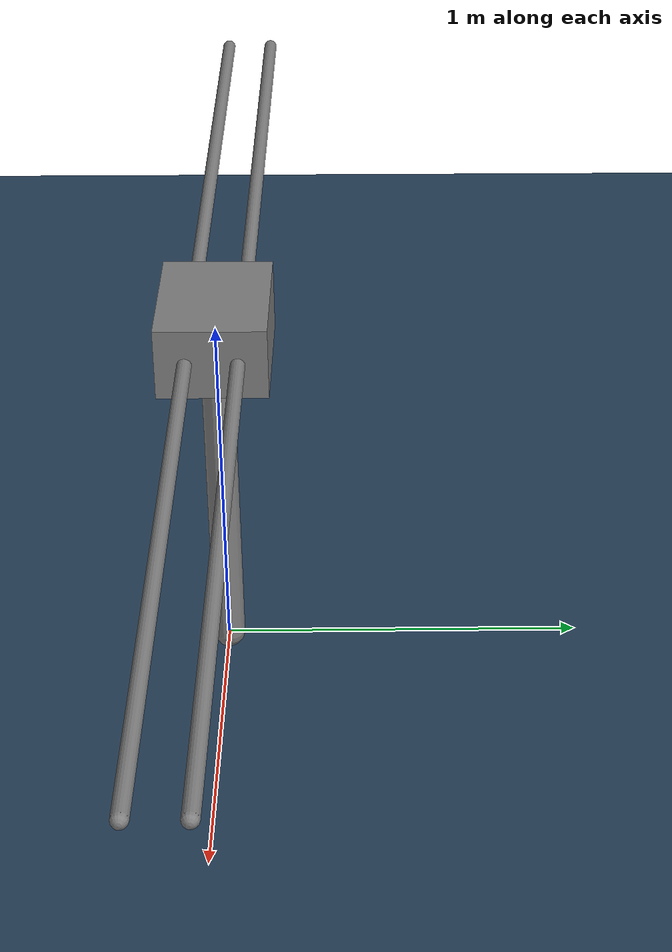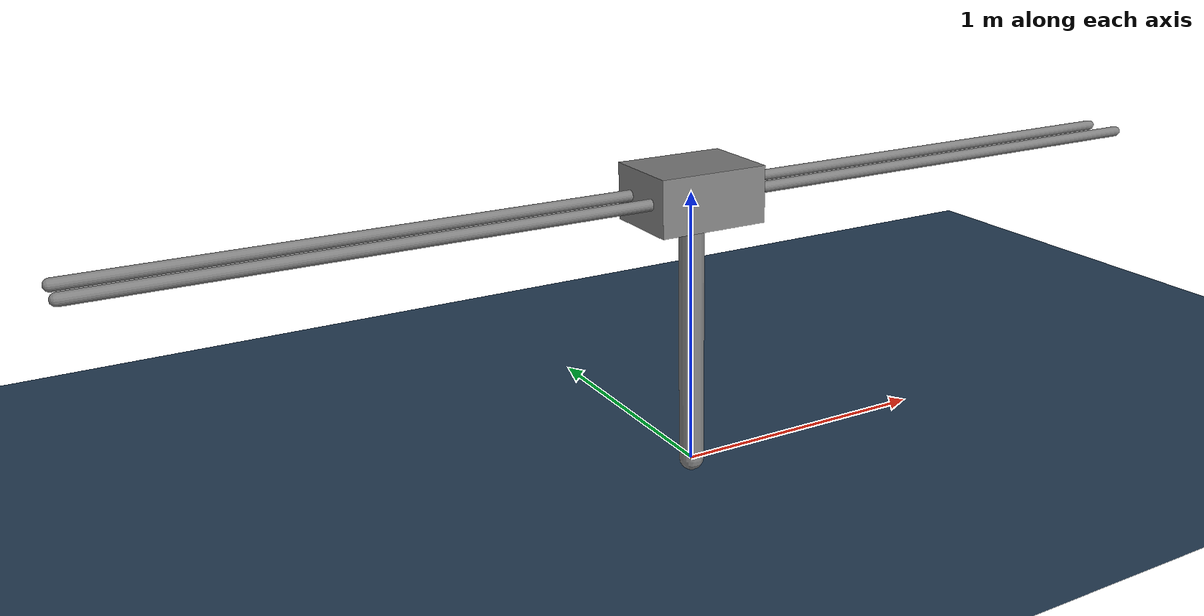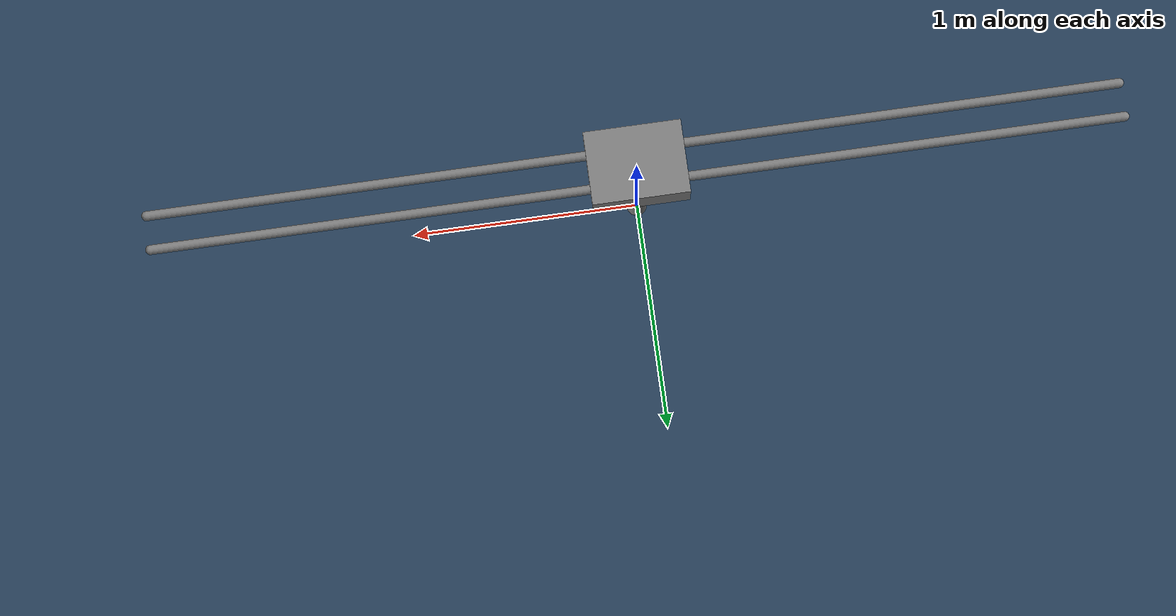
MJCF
<mujoco model="cart_pole_scene">
  <!-- Model that includes the cart-pole along with scene details like lighting and a ground. -->
  <include file="cart_pole_unconstrained.xml"/>

  <statistic center="0.0 0.0 1.0" extent="3.0"/>

  <visual>
    <headlight diffuse="0.6 0.6 0.6" ambient="0.3 0.3 0.3" specular="0 0 0"/>
    <rgba haze="0.15 0.25 0.35 1"/>
    <global elevation="0.0"/>
  </visual>

  <asset>
    <texture type="skybox" builtin="gradient" rgb1="0.3 0.5 0.7" rgb2="0 0 0" width="512" height="3072"/>
    <texture type="2d" name="groundplane" builtin="checker" mark="edge" rgb1="0.2 0.3 0.4" rgb2="0.1 0.2 0.3"
      markrgb="0.8 0.8 0.8" width="300" height="300"/>
    <material name="groundplane" texture="groundplane" texuniform="true" texrepeat="5 5" reflectance="0.2"/>
  </asset>

  <worldbody>
    <light pos="0 0 3" dir="0 0 -1" directional="false"/>
    <geom name="floor" pos="0 0 -0.05" size="0 0 .125" type="plane" material="groundplane" conaffinity="15" condim="3"/>
  </worldbody>

</mujoco>

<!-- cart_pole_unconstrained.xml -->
<mujoco model="cartpole">
  <option timestep="0.01" iterations="1" ls_iterations="5">
    <flag contact="disable"/>
  </option>

  <default>
    <default class="pole">
      <joint type="hinge" axis="0 1 0"  damping="2e-6"/>
      <geom type="capsule" fromto="0 0 -1 0 0 0" size="0.045" mass=".1"/>
    </default>
  </default>

  <worldbody>
    <light name="light" pos="0 0 6"/>
    <camera name="fixed" pos="0 -4 1" zaxis="0 -1 0"/>
    <camera name="lookatcart" mode="targetbody" target="cart" pos="0 -2 2"/>
    <geom name="rail1" type="capsule" pos="0  .07 1" zaxis="1 0 0" size="0.02 2"/>
    <geom name="rail2" type="capsule" pos="0 -.07 1" zaxis="1 0 0" size="0.02 2"/>
    <body name="cart" pos="0 0 1">
      <joint name="slider" type="slide" limited="true" axis="1 0 0" range="-1.8 1.8" solreflimit=".08 1" damping="1.0e-4"/>
      <geom name="cart" type="box" size="0.2 0.15 0.1" mass="1"/>
      <body name="pole_1" childclass="pole">
        <joint name="hinge_1" damping="1.0e-4"/>
        <geom name="pole_1"/>
        <site name="tip" pos="0 0 -1"/>
      </body>
    </body>
  </worldbody>

  <actuator>
    <motor name="slide" joint="slider" gear="10"/>
  </actuator>
</mujoco>
